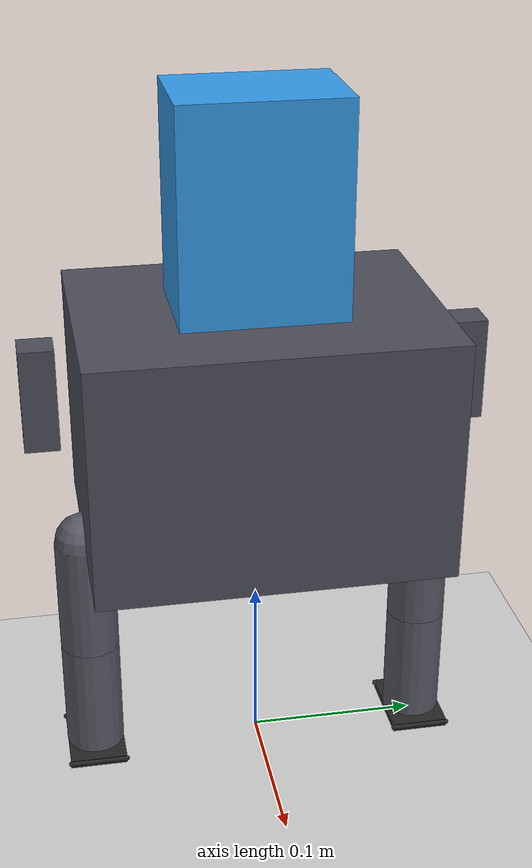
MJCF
<mujoco model="sweep4b_head30_B">
  <compiler angle="radian" autolimits="true"/>
  <option timestep="0.004" gravity="0 0 -9.81"/>

  <default>
    <joint type="hinge" damping="0.3" armature="0.001"/>
    <position kp="12" ctrlrange="-3.1416 3.1416"/>
    <geom contype="0" conaffinity="0" friction="0.9 0.02 0.01"/>
    <default class="foot_collision">
      <geom contype="1" conaffinity="1"/>
    </default>
  </default>

  <worldbody>
    <light pos="0 0 2" dir="0 0 -1" diffuse="1 1 1"/>
    <geom name="floor" type="plane" size="0 0 0.01" contype="1" conaffinity="0" rgba="0.8 0.8 0.8 1"/>

    <body name="body_link" pos="0 0 0.215000">
      <freejoint/>
      <site name="imu" pos="0 0 0"/>
      <geom name="torso_geom" type="box" size="0.076364 0.101818 0.070000" mass="0.53" rgba="0.3 0.3 0.35 1"/>
      <geom name="head_geom" type="box" pos="0 0 0.130000" size="0.033333 0.046667 0.060000" mass="0.45" rgba="0.2 0.6 0.9 1"/>
      <geom name="l_arm_geom" type="box" pos="0 0.121818 0.025455" size="0.01 0.01 0.03" mass="0.03" rgba="0.3 0.3 0.35 1"/>
      <geom name="r_arm_geom" type="box" pos="0 -0.121818 0.025455" size="0.01 0.01 0.03" mass="0.03" rgba="0.3 0.3 0.35 1"/>

      <body name="l_hip_yaw_link" pos="0 0.101818 -0.070000">
        <joint name="l_hip_yaw" axis="0 0 1" range="-0.5236 0.5236"/>
        <geom type="sphere" size="0.008" mass="0.02" rgba="0.5 0.5 0.5 1"/>
        <body name="l_hip_roll_link">
          <joint name="l_hip_roll" axis="1 0 0" range="-0.5236 0.5236"/>
          <geom type="sphere" size="0.008" mass="0.03" rgba="0.5 0.5 0.5 1"/>
          <body name="l_hip_pitch_link">
            <joint name="l_hip_pitch" axis="0 1 0" range="-1.5708 0.7854"/>
            <geom name="l_thigh_geom" type="capsule" fromto="0 0 0 0 0 -0.070000" size="0.017500" mass="0.08" rgba="0.35 0.35 0.4 1"/>
            <body name="l_knee_link" pos="0 0 -0.070000">
              <joint name="l_knee" axis="0 1 0" range="-0.1745 2.0944"/>
              <geom name="l_shank_geom" type="capsule" fromto="0 0 0 0 0 -0.070000" size="0.017500" mass="0.06" rgba="0.35 0.35 0.4 1"/>
              <body name="l_ank_pitch_link" pos="0 0 -0.070000">
                <joint name="l_ank_pitch" axis="0 1 0" range="-0.5236 0.5236"/>
                <geom class="foot_collision" name="l_foot_sole" type="box" pos="0 0 -0.002500" size="0.024500 0.017150 0.002500" mass="0.035" rgba="0.15 0.15 0.15 1"/>
                <geom class="foot_collision" name="l_foot_heel_chamfer" type="capsule" pos="-0.024500 0 -0.002" axisangle="1 0 0 1.5708" size="0.0015 0.017150" mass="0.0025" rgba="0.15 0.15 0.15 1"/>
                <geom class="foot_collision" name="l_foot_toe_chamfer" type="capsule" pos="0.024500 0 -0.002" axisangle="1 0 0 1.5708" size="0.0015 0.017150" mass="0.0025" rgba="0.15 0.15 0.15 1"/>
              </body>
            </body>
          </body>
        </body>
      </body>

      <body name="r_hip_yaw_link" pos="0 -0.101818 -0.070000">
        <joint name="r_hip_yaw" axis="0 0 1" range="-0.5236 0.5236"/>
        <geom type="sphere" size="0.008" mass="0.02" rgba="0.5 0.5 0.5 1"/>
        <body name="r_hip_roll_link">
          <joint name="r_hip_roll" axis="1 0 0" range="-0.5236 0.5236"/>
          <geom type="sphere" size="0.008" mass="0.03" rgba="0.5 0.5 0.5 1"/>
          <body name="r_hip_pitch_link">
            <joint name="r_hip_pitch" axis="0 1 0" range="-1.5708 0.7854"/>
            <geom name="r_thigh_geom" type="capsule" fromto="0 0 0 0 0 -0.070000" size="0.017500" mass="0.08" rgba="0.35 0.35 0.4 1"/>
            <body name="r_knee_link" pos="0 0 -0.070000">
              <joint name="r_knee" axis="0 1 0" range="-0.1745 2.0944"/>
              <geom name="r_shank_geom" type="capsule" fromto="0 0 0 0 0 -0.070000" size="0.017500" mass="0.06" rgba="0.35 0.35 0.4 1"/>
              <body name="r_ank_pitch_link" pos="0 0 -0.070000">
                <joint name="r_ank_pitch" axis="0 1 0" range="-0.5236 0.5236"/>
                <geom class="foot_collision" name="r_foot_sole" type="box" pos="0 0 -0.002500" size="0.024500 0.017150 0.002500" mass="0.035" rgba="0.15 0.15 0.15 1"/>
                <geom class="foot_collision" name="r_foot_heel_chamfer" type="capsule" pos="-0.024500 0 -0.002" axisangle="1 0 0 1.5708" size="0.0015 0.017150" mass="0.0025" rgba="0.15 0.15 0.15 1"/>
                <geom class="foot_collision" name="r_foot_toe_chamfer" type="capsule" pos="0.024500 0 -0.002" axisangle="1 0 0 1.5708" size="0.0015 0.017150" mass="0.0025" rgba="0.15 0.15 0.15 1"/>
              </body>
            </body>
          </body>
        </body>
      </body>
    </body>
  </worldbody>

  <actuator>
    <position name="l_hip_yaw_act" joint="l_hip_yaw"/>
    <position name="l_hip_roll_act" joint="l_hip_roll"/>
    <position name="l_hip_pitch_act" joint="l_hip_pitch"/>
    <position name="l_knee_act" joint="l_knee"/>
    <position name="l_ank_pitch_act" joint="l_ank_pitch"/>
    <position name="r_hip_yaw_act" joint="r_hip_yaw"/>
    <position name="r_hip_roll_act" joint="r_hip_roll"/>
    <position name="r_hip_pitch_act" joint="r_hip_pitch"/>
    <position name="r_knee_act" joint="r_knee"/>
    <position name="r_ank_pitch_act" joint="r_ank_pitch"/>
  </actuator>

  <sensor>
    <gyro site="imu" name="gyro"/>
    <velocimeter site="imu" name="local_linvel"/>
    <accelerometer site="imu" name="accelerometer"/>
    <framezaxis objtype="site" objname="imu" name="upvector"/>
    <framelinvel objtype="site" objname="imu" name="global_linvel"/>
    <frameangvel objtype="site" objname="imu" name="global_angvel"/>
    <framepos objtype="site" objname="imu" name="position"/>
  </sensor>

  <keyframe>
    <key name="stand" qpos="0 0 0.215000 1 0 0 0  0 0 0 0 0  0 0 0 0 0"/>
  </keyframe>
</mujoco>
